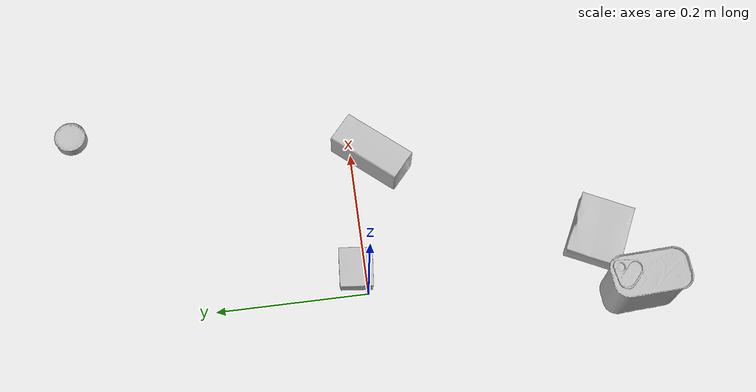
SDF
<sdf version="1.4">
  <world name="default">
    <light name="light1" type="point">
      <pose>0 0 1 0 0 0</pose>
      <diffuse>3 3 3 1</diffuse>
      <specular>3 3 3 1</specular>
    </light>
    <light name="light2" type="point">
      <pose>0 0.5 2 0 0 0</pose>
      <diffuse>1 1 1 1</diffuse>
      <specular>1 1 1 1</specular>
    </light>
    <light name="light3" type="point">
      <pose>0 0.5 2 0 0 0</pose>
      <diffuse>3 3 3 1</diffuse>
      <specular>3 3 3 1</specular>
    </light>
    <scene>
      <ambient>0.7 0.7 0.7</ambient>
    </scene>
    <model name="box1">
      <link name="link_box1">
        <collision name="default">
          <geometry>
            <mesh>
              <uri>model://pudding_box/collision_meshes/collision.obj</uri>
              <scale>0.5 0.5 0.5</scale>
            </mesh>
          </geometry>
          <surface>
            <friction>
              <ode>
                <mu>0.5</mu>
                <mu2>0.5</mu2>
              </ode>
            </friction>
          <contact>
        <ode>
            <max_vel>0</max_vel>
            <min_depth>0.0001</min_depth>
            <kp>1e8</kp>
        </ode>
    </contact></surface>
        </collision>
        <visual name="default">
          <geometry>
            <mesh>
              <uri>model://pudding_box/visual_meshes/visual.dae</uri>
              <scale>0.5 0.5 0.5</scale>
            </mesh>
          </geometry>
        </visual>
        <inertial>
          <mass>0.037190694361925125</mass>
          <pose>0.00024474109522998333 0.00040339428232982755 -0.0002594413817860186 0.005213101817299687 -0.0066037968510836995 0.02007982330137587</pose>
          <inertia>
            <ixx>1.0510541e-05</ixx>
            <iyy>7.071568e-06</iyy>
            <izz>1.552156e-05</izz>
            <ixy>0</ixy>
            <ixz>0</ixz>
            <iyz>0</iyz>
          </inertia>
        </inertial>
      </link>
      <pose>0.03448444604873657 0.012375002726912498 0.009862902574241161 0.022348538077330088 -0.01139172625622107 1.4773269418598818</pose>
    </model>
    <model name="box2">
      <link name="link_box2">
        <collision name="default">
          <geometry>
            <mesh>
              <uri>model://gelatin_box/collision_meshes/collision.obj</uri>
              <scale>1.0 1.0 1.0</scale>
            </mesh>
          </geometry>
          <surface>
            <friction>
              <ode>
                <mu>0.5</mu>
                <mu2>0.5</mu2>
              </ode>
            </friction>
          <contact>
        <ode>
            <max_vel>0</max_vel>
            <min_depth>0.0001</min_depth>
            <kp>1e8</kp>
        </ode>
    </contact></surface>
        </collision>
        <visual name="default">
          <geometry>
            <mesh>
              <uri>model://gelatin_box/visual_meshes/visual.dae</uri>
              <scale>1.0 1.0 1.0</scale>
            </mesh>
          </geometry>
        </visual>
        <inertial>
          <mass>0.11744645982980728</mass>
          <pose>0.0004319618456065655 0.00011156871914863586 -0.0003640321083366871 -0.001050371865231848 -0.004755818223747806 0.01644056319675078</pose>
          <inertia>
            <ixx>8.290762e-05</ixx>
            <iyy>5.9220478e-05</iyy>
            <izz>0.00012620387</izz>
            <ixy>0</ixy>
            <ixz>0</ixz>
            <iyz>0</iyz>
          </inertia>
        </inertial>
      </link>
      <pose>0.04390285536646843 -0.31365078687667847 0.015168317593634129 0.005597454580071949 -0.007304589527896807 1.106029029416381</pose>
    </model>
    <model name="box3">
      <link name="link_box3">
        <collision name="default">
          <geometry>
            <mesh>
              <uri>model://wood_block/collision_meshes/collision.obj</uri>
              <scale>0.5 0.5 0.5</scale>
            </mesh>
          </geometry>
          <surface>
            <friction>
              <ode>
                <mu>0.5</mu>
                <mu2>0.5</mu2>
              </ode>
            </friction>
          <contact>
        <ode>
            <max_vel>0</max_vel>
            <min_depth>0.0001</min_depth>
            <kp>1e8</kp>
        </ode>
    </contact></surface>
        </collision>
        <visual name="default">
          <geometry>
            <mesh>
              <uri>model://wood_block/visual_meshes/visual.dae</uri>
              <scale>0.5 0.5 0.5</scale>
            </mesh>
          </geometry>
        </visual>
        <inertial>
          <mass>0.2439567744731903</mass>
          <pose>-2.906657982748584e-06 -0.00028540476341731846 0.00013204292918089777 -0.05220841280222248 -0.00519269633387802 -0.006861376952924709</pose>
          <inertia>
            <ixx>8.161277e-05</ixx>
            <iyy>0.00025781477</iyy>
            <izz>0.0002568504</izz>
            <ixy>0</ixy>
            <ixz>0</ixz>
            <iyz>0</iyz>
          </inertia>
        </inertial>
      </link>
      <pose>0.192277729511261 -0.028123952448368073 0.0226292721927166 -0.005208362425449715 0.005718710764361976 -2.2827744143025503</pose>
    </model>
    <model name="can1">
      <link name="link_can1">
        <collision name="default">
          <geometry>
            <mesh>
              <uri>model://tuna_fish_can/collision_meshes/collision.obj</uri>
              <scale>0.5 0.5 0.5</scale>
            </mesh>
          </geometry>
          <surface>
            <friction>
              <ode>
                <mu>0.5</mu>
                <mu2>0.5</mu2>
              </ode>
            </friction>
          <contact>
        <ode>
            <max_vel>0</max_vel>
            <min_depth>0.0001</min_depth>
            <kp>1e8</kp>
        </ode>
    </contact></surface>
        </collision>
        <visual name="default">
          <geometry>
            <mesh>
              <uri>model://tuna_fish_can/visual_meshes/visual.dae</uri>
              <scale>0.5 0.5 0.5</scale>
            </mesh>
          </geometry>
        </visual>
        <inertial>
          <mass>0.02880808152258396</mass>
          <pose>-2.036173827946186e-05 -7.256211574713234e-06 -0.0005269025568850338 -0.0017944794030227106 0.00017162104037918286 0.24054189207372795</pose>
          <inertia>
            <ixx>3.894896e-06</ixx>
            <iyy>3.878662e-06</iyy>
            <izz>6.6647226e-06</izz>
            <ixy>0</ixy>
            <ixz>0</ixz>
            <iyz>0</iyz>
          </inertia>
        </inertial>
      </link>
      <pose>0.2684127688407898 0.37811219692230225 0.00851999782025814 -3.374259852821985e-08 1.4679137212887755e-08 -2.3454364176309017</pose>
    </model>
    <model name="can2">
      <link name="link_can2">
        <collision name="default">
          <geometry>
            <mesh>
              <uri>model://potted_meat_can/collision_meshes/collision.obj</uri>
              <scale>1.0 1.0 1.0</scale>
            </mesh>
          </geometry>
          <surface>
            <friction>
              <ode>
                <mu>0.5</mu>
                <mu2>0.5</mu2>
              </ode>
            </friction>
          <contact>
        <ode>
            <max_vel>0</max_vel>
            <min_depth>0.0001</min_depth>
            <kp>1e8</kp>
        </ode>
    </contact></surface>
        </collision>
        <visual name="default">
          <geometry>
            <mesh>
              <uri>model://potted_meat_can/visual_meshes/visual.dae</uri>
              <scale>1.0 1.0 1.0</scale>
            </mesh>
          </geometry>
        </visual>
        <inertial>
          <mass>0.21485549211502075</mass>
          <pose>0.00022888135572429746 -5.989110650261864e-05 -0.0006367442547343671 -0.028093358319385277 -0.007232601893117688 0.015406275523281094</pose>
          <inertia>
            <ixx>0.00027638907</ixx>
            <iyy>0.00016792737</iyy>
            <izz>0.00020102048</izz>
            <ixy>0</ixy>
            <ixz>0</ixz>
            <iyz>0</iyz>
          </inertia>
        </inertial>
      </link>
      <pose>-0.03913893550634384 -0.34867507219314575 0.04212800785899162 -1.896326781143168e-09 -4.0143754244447917e-07 -3.10321724199382</pose>
    </model>
  <physics type="ode">
      <max_contacts>50</max_contacts>
      <ode>
        <solver>
          <type>quick</type>
          <iters>75</iters>
        </solver>
        <constraints>
          <contact_max_correcting_vel>0</contact_max_correcting_vel>
          <contact_surface_layer>0</contact_surface_layer>
        </constraints>
      </ode>
    </physics></world>
</sdf>
